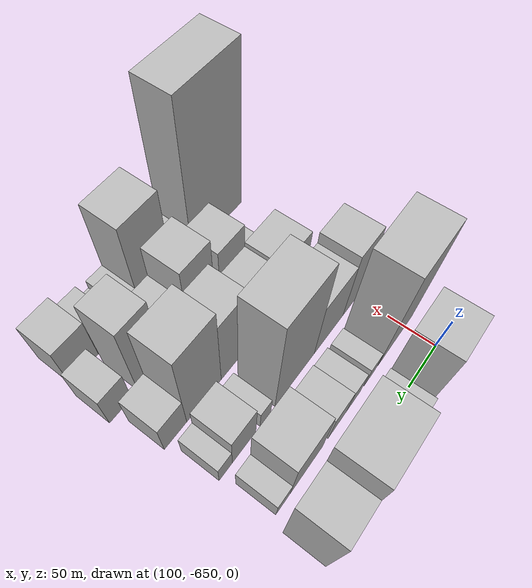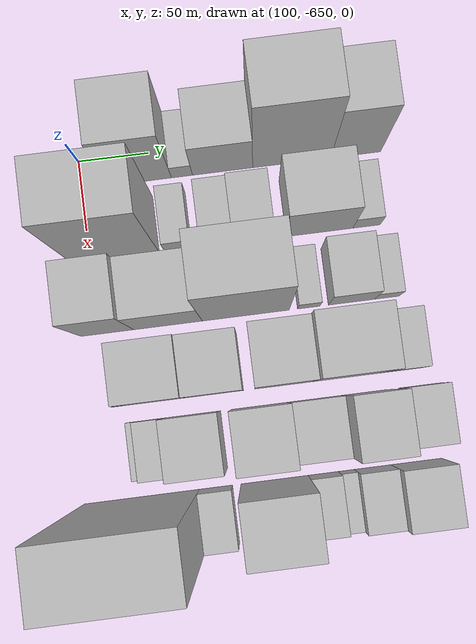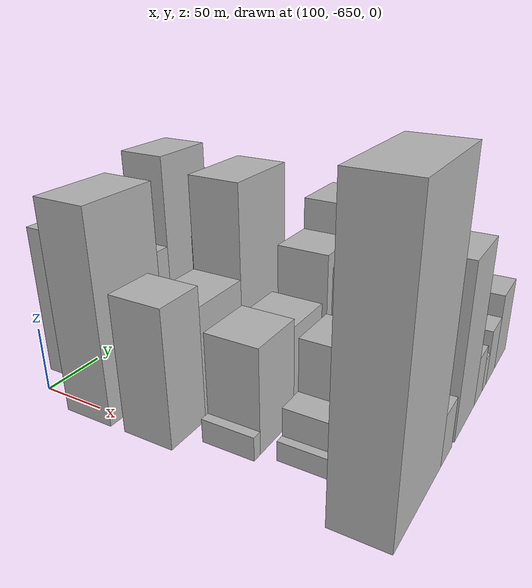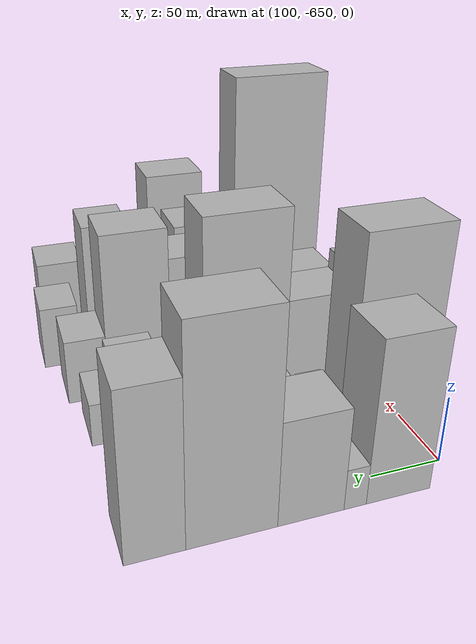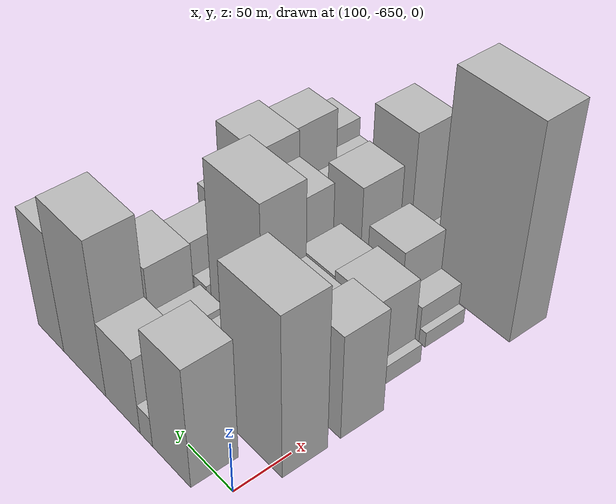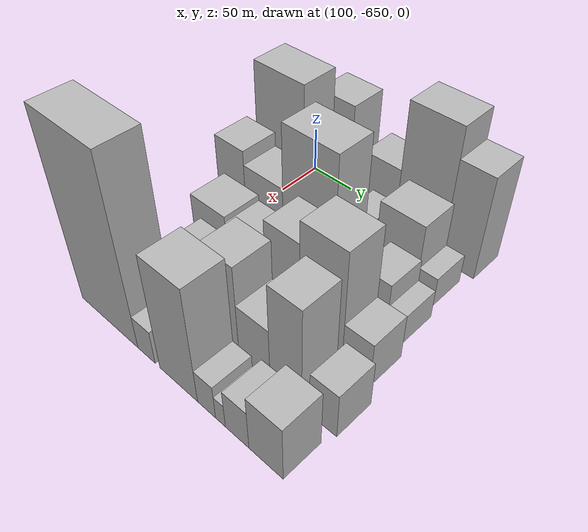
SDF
<sdf version="1.6">
 <world name="default">
  <model name="building_7">
   <static>1</static>
   <pose>100.0000 -607.7722 0 0.000000 0.000000 0.000000</pose>
   <link name="link">
    <pose>0 0 58.50 0 0 0</pose>
    <collision name="collision"><geometry><box><size>40.0000 44.2936 117.0000</size></box></geometry></collision>
    <visual name="visual">
     <cast_shadows>0</cast_shadows>
     <geometry><box><size>40.0000 44.2936 117.0000</size></box></geometry>
     <material>
      <script>
       <uri>model://HANNAS_wall/materials/scripts</uri>
       <uri>model://HANNAS_wall/materials/textures</uri>
       <name>vrc/HANNAS_wall</name>
      </script>
     </material>
    </visual>
   </link>
  </model>
  <model name="building_8">
   <static>1</static>
   <pose>100.0000 -578.1136 0 0.000000 0.000000 0.000000</pose>
   <link name="link">
    <pose>0 0 15.00 0 0 0</pose>
    <collision name="collision"><geometry><box><size>40.0000 15.0235 30.0000</size></box></geometry></collision>
    <visual name="visual">
     <cast_shadows>0</cast_shadows>
     <geometry><box><size>40.0000 15.0235 30.0000</size></box></geometry>
     <material>
      <script>
       <uri>model://HANNAS_wall/materials/scripts</uri>
       <uri>model://HANNAS_wall/materials/textures</uri>
       <name>vrc/HANNAS_wall</name>
      </script>
     </material>
    </visual>
   </link>
  </model>
  <model name="building_9">
   <static>1</static>
   <pose>100.0000 -549.1109 0 0.000000 0.000000 0.000000</pose>
   <link name="link">
    <pose>0 0 37.50 0 0 0</pose>
    <collision name="collision"><geometry><box><size>40.0000 42.9820 75.0000</size></box></geometry></collision>
    <visual name="visual">
     <cast_shadows>0</cast_shadows>
     <geometry><box><size>40.0000 42.9820 75.0000</size></box></geometry>
     <material>
      <script>
       <uri>model://HANNAS_wall/materials/scripts</uri>
       <uri>model://HANNAS_wall/materials/textures</uri>
       <name>vrc/HANNAS_wall</name>
      </script>
     </material>
    </visual>
   </link>
  </model>
  <model name="building_10">
   <static>1</static>
   <pose>100.0000 -499.6481 0 0.000000 0.000000 0.000000</pose>
   <link name="link">
    <pose>0 0 75.00 0 0 0</pose>
    <collision name="collision"><geometry><box><size>40.0000 55.9435 150.0000</size></box></geometry></collision>
    <visual name="visual">
     <cast_shadows>0</cast_shadows>
     <geometry><box><size>40.0000 55.9435 150.0000</size></box></geometry>
     <material>
      <script>
       <uri>model://HANNAS_wall/materials/scripts</uri>
       <uri>model://HANNAS_wall/materials/textures</uri>
       <name>vrc/HANNAS_wall</name>
      </script>
     </material>
    </visual>
   </link>
  </model>
  <model name="building_11">
   <static>1</static>
   <pose>100.0000 -453.7469 0 0.000000 0.000000 0.000000</pose>
   <link name="link">
    <pose>0 0 58.50 0 0 0</pose>
    <collision name="collision"><geometry><box><size>40.0000 35.8590 117.0000</size></box></geometry></collision>
    <visual name="visual">
     <cast_shadows>0</cast_shadows>
     <geometry><box><size>40.0000 35.8590 117.0000</size></box></geometry>
     <material>
      <script>
       <uri>model://HANNAS_wall/materials/scripts</uri>
       <uri>model://HANNAS_wall/materials/textures</uri>
       <name>vrc/HANNAS_wall</name>
      </script>
     </material>
    </visual>
   </link>
  </model>
  <model name="building_55">
   <static>1</static>
   <pose>152.0000 -631.4597 0 0.000000 0.000000 0.000000</pose>
   <link name="link">
    <pose>0 0 78.00 0 0 0</pose>
    <collision name="collision"><geometry><box><size>40.0000 61.7300 156.0000</size></box></geometry></collision>
    <visual name="visual">
     <cast_shadows>0</cast_shadows>
     <geometry><box><size>40.0000 61.7300 156.0000</size></box></geometry>
     <material>
      <script>
       <uri>model://HANNAS_wall/materials/scripts</uri>
       <uri>model://HANNAS_wall/materials/textures</uri>
       <name>vrc/HANNAS_wall</name>
      </script>
     </material>
    </visual>
   </link>
  </model>
  <model name="building_56">
   <static>1</static>
   <pose>152.0000 -587.0116 0 0.000000 0.000000 0.000000</pose>
   <link name="link">
    <pose>0 0 18.00 0 0 0</pose>
    <collision name="collision"><geometry><box><size>40.0000 19.1662 36.0000</size></box></geometry></collision>
    <visual name="visual">
     <cast_shadows>0</cast_shadows>
     <geometry><box><size>40.0000 19.1662 36.0000</size></box></geometry>
     <material>
      <script>
       <uri>model://HANNAS_wall/materials/scripts</uri>
       <uri>model://HANNAS_wall/materials/textures</uri>
       <name>vrc/HANNAS_wall</name>
      </script>
     </material>
    </visual>
   </link>
  </model>
  <model name="building_57">
   <static>1</static>
   <pose>152.0000 -559.1922 0 0.000000 0.000000 0.000000</pose>
   <link name="link">
    <pose>0 0 21.00 0 0 0</pose>
    <collision name="collision"><geometry><box><size>40.0000 22.4726 42.0000</size></box></geometry></collision>
    <visual name="visual">
     <cast_shadows>0</cast_shadows>
     <geometry><box><size>40.0000 22.4726 42.0000</size></box></geometry>
     <material>
      <script>
       <uri>model://HANNAS_wall/materials/scripts</uri>
       <uri>model://HANNAS_wall/materials/textures</uri>
       <name>vrc/HANNAS_wall</name>
      </script>
     </material>
    </visual>
   </link>
  </model>
  <model name="building_58">
   <static>1</static>
   <pose>152.0000 -533.6218 0 0.000000 0.000000 0.000000</pose>
   <link name="link">
    <pose>0 0 24.00 0 0 0</pose>
    <collision name="collision"><geometry><box><size>40.0000 28.6683 48.0000</size></box></geometry></collision>
    <visual name="visual">
     <cast_shadows>0</cast_shadows>
     <geometry><box><size>40.0000 28.6683 48.0000</size></box></geometry>
     <material>
      <script>
       <uri>model://HANNAS_wall/materials/scripts</uri>
       <uri>model://HANNAS_wall/materials/textures</uri>
       <name>vrc/HANNAS_wall</name>
      </script>
     </material>
    </visual>
   </link>
  </model>
  <model name="building_59">
   <static>1</static>
   <pose>152.0000 -486.4755 0 0.000000 0.000000 0.000000</pose>
   <link name="link">
    <pose>0 0 40.50 0 0 0</pose>
    <collision name="collision"><geometry><box><size>40.0000 47.6243 81.0000</size></box></geometry></collision>
    <visual name="visual">
     <cast_shadows>0</cast_shadows>
     <geometry><box><size>40.0000 47.6243 81.0000</size></box></geometry>
     <material>
      <script>
       <uri>model://HANNAS_wall/materials/scripts</uri>
       <uri>model://HANNAS_wall/materials/textures</uri>
       <name>vrc/HANNAS_wall</name>
      </script>
     </material>
    </visual>
   </link>
  </model>
  <model name="building_60">
   <static>1</static>
   <pose>152.0000 -452.9226 0 0.000000 0.000000 0.000000</pose>
   <link name="link">
    <pose>0 0 16.50 0 0 0</pose>
    <collision name="collision"><geometry><box><size>40.0000 19.4815 33.0000</size></box></geometry></collision>
    <visual name="visual">
     <cast_shadows>0</cast_shadows>
     <geometry><box><size>40.0000 19.4815 33.0000</size></box></geometry>
     <material>
      <script>
       <uri>model://HANNAS_wall/materials/scripts</uri>
       <uri>model://HANNAS_wall/materials/textures</uri>
       <name>vrc/HANNAS_wall</name>
      </script>
     </material>
    </visual>
   </link>
  </model>
  <model name="building_102">
   <static>1</static>
   <pose>204.0000 -643.3787 0 0.000000 0.000000 0.000000</pose>
   <link name="link">
    <pose>0 0 51.00 0 0 0</pose>
    <collision name="collision"><geometry><box><size>40.0000 37.1941 102.0000</size></box></geometry></collision>
    <visual name="visual">
     <cast_shadows>0</cast_shadows>
     <geometry><box><size>40.0000 37.1941 102.0000</size></box></geometry>
     <material>
      <script>
       <uri>model://HANNAS_wall/materials/scripts</uri>
       <uri>model://HANNAS_wall/materials/textures</uri>
       <name>vrc/HANNAS_wall</name>
      </script>
     </material>
    </visual>
   </link>
  </model>
  <model name="building_103">
   <static>1</static>
   <pose>204.0000 -600.5441 0 0.000000 0.000000 0.000000</pose>
   <link name="link">
    <pose>0 0 43.50 0 0 0</pose>
    <collision name="collision"><geometry><box><size>40.0000 48.4751 87.0000</size></box></geometry></collision>
    <visual name="visual">
     <cast_shadows>0</cast_shadows>
     <geometry><box><size>40.0000 48.4751 87.0000</size></box></geometry>
     <material>
      <script>
       <uri>model://HANNAS_wall/materials/scripts</uri>
       <uri>model://HANNAS_wall/materials/textures</uri>
       <name>vrc/HANNAS_wall</name>
      </script>
     </material>
    </visual>
   </link>
  </model>
  <model name="building_104">
   <static>1</static>
   <pose>204.0000 -545.6280 0 0.000000 0.000000 0.000000</pose>
   <link name="link">
    <pose>0 0 78.00 0 0 0</pose>
    <collision name="collision"><geometry><box><size>40.0000 61.3572 156.0000</size></box></geometry></collision>
    <visual name="visual">
     <cast_shadows>0</cast_shadows>
     <geometry><box><size>40.0000 61.3572 156.0000</size></box></geometry>
     <material>
      <script>
       <uri>model://HANNAS_wall/materials/scripts</uri>
       <uri>model://HANNAS_wall/materials/textures</uri>
       <name>vrc/HANNAS_wall</name>
      </script>
     </material>
    </visual>
   </link>
  </model>
  <model name="building_105">
   <static>1</static>
   <pose>204.0000 -501.0361 0 0.000000 0.000000 0.000000</pose>
   <link name="link">
    <pose>0 0 15.00 0 0 0</pose>
    <collision name="collision"><geometry><box><size>40.0000 15.8264 30.0000</size></box></geometry></collision>
    <visual name="visual">
     <cast_shadows>0</cast_shadows>
     <geometry><box><size>40.0000 15.8264 30.0000</size></box></geometry>
     <material>
      <script>
       <uri>model://HANNAS_wall/materials/scripts</uri>
       <uri>model://HANNAS_wall/materials/textures</uri>
       <name>vrc/HANNAS_wall</name>
      </script>
     </material>
    </visual>
   </link>
  </model>
  <model name="building_106">
   <static>1</static>
   <pose>204.0000 -470.7865 0 0.000000 0.000000 0.000000</pose>
   <link name="link">
    <pose>0 0 28.50 0 0 0</pose>
    <collision name="collision"><geometry><box><size>40.0000 32.6728 57.0000</size></box></geometry></collision>
    <visual name="visual">
     <cast_shadows>0</cast_shadows>
     <geometry><box><size>40.0000 32.6728 57.0000</size></box></geometry>
     <material>
      <script>
       <uri>model://HANNAS_wall/materials/scripts</uri>
       <uri>model://HANNAS_wall/materials/textures</uri>
       <name>vrc/HANNAS_wall</name>
      </script>
     </material>
    </visual>
   </link>
  </model>
  <model name="building_107">
   <static>1</static>
   <pose>204.0000 -445.6400 0 0.000000 0.000000 0.000000</pose>
   <link name="link">
    <pose>0 0 16.50 0 0 0</pose>
    <collision name="collision"><geometry><box><size>40.0000 17.6203 33.0000</size></box></geometry></collision>
    <visual name="visual">
     <cast_shadows>0</cast_shadows>
     <geometry><box><size>40.0000 17.6203 33.0000</size></box></geometry>
     <material>
      <script>
       <uri>model://HANNAS_wall/materials/scripts</uri>
       <uri>model://HANNAS_wall/materials/textures</uri>
       <name>vrc/HANNAS_wall</name>
      </script>
     </material>
    </visual>
   </link>
  </model>
  <model name="building_148">
   <static>1</static>
   <pose>256.0000 -641.1919 0 0.000000 0.000000 0.000000</pose>
   <link name="link">
    <pose>0 0 9.00 0 0 0</pose>
    <collision name="collision"><geometry><box><size>40.0000 7.4171 18.0000</size></box></geometry></collision>
    <visual name="visual">
     <cast_shadows>0</cast_shadows>
     <geometry><box><size>40.0000 7.4171 18.0000</size></box></geometry>
     <material>
      <script>
       <uri>model://HANNAS_wall/materials/scripts</uri>
       <uri>model://HANNAS_wall/materials/textures</uri>
       <name>vrc/HANNAS_wall</name>
      </script>
     </material>
    </visual>
   </link>
  </model>
  <model name="building_149">
   <static>1</static>
   <pose>256.0000 -615.4898 0 0.000000 0.000000 0.000000</pose>
   <link name="link">
    <pose>0 0 39.00 0 0 0</pose>
    <collision name="collision"><geometry><box><size>40.0000 43.9872 78.0000</size></box></geometry></collision>
    <visual name="visual">
     <cast_shadows>0</cast_shadows>
     <geometry><box><size>40.0000 43.9872 78.0000</size></box></geometry>
     <material>
      <script>
       <uri>model://HANNAS_wall/materials/scripts</uri>
       <uri>model://HANNAS_wall/materials/textures</uri>
       <name>vrc/HANNAS_wall</name>
      </script>
     </material>
    </visual>
   </link>
  </model>
  <model name="building_150">
   <static>1</static>
   <pose>256.0000 -573.6468 0 0.000000 0.000000 0.000000</pose>
   <link name="link">
    <pose>0 0 36.00 0 0 0</pose>
    <collision name="collision"><geometry><box><size>40.0000 39.6987 72.0000</size></box></geometry></collision>
    <visual name="visual">
     <cast_shadows>0</cast_shadows>
     <geometry><box><size>40.0000 39.6987 72.0000</size></box></geometry>
     <material>
      <script>
       <uri>model://HANNAS_wall/materials/scripts</uri>
       <uri>model://HANNAS_wall/materials/textures</uri>
       <name>vrc/HANNAS_wall</name>
      </script>
     </material>
    </visual>
   </link>
  </model>
  <model name="building_151">
   <static>1</static>
   <pose>256.0000 -526.0276 0 0.000000 0.000000 0.000000</pose>
   <link name="link">
    <pose>0 0 52.50 0 0 0</pose>
    <collision name="collision"><geometry><box><size>40.0000 39.5398 105.0000</size></box></geometry></collision>
    <visual name="visual">
     <cast_shadows>0</cast_shadows>
     <geometry><box><size>40.0000 39.5398 105.0000</size></box></geometry>
     <material>
      <script>
       <uri>model://HANNAS_wall/materials/scripts</uri>
       <uri>model://HANNAS_wall/materials/textures</uri>
       <name>vrc/HANNAS_wall</name>
      </script>
     </material>
    </visual>
   </link>
  </model>
  <model name="building_152">
   <static>1</static>
   <pose>256.0000 -482.3636 0 0.000000 0.000000 0.000000</pose>
   <link name="link">
    <pose>0 0 64.50 0 0 0</pose>
    <collision name="collision"><geometry><box><size>40.0000 47.7882 129.0000</size></box></geometry></collision>
    <visual name="visual">
     <cast_shadows>0</cast_shadows>
     <geometry><box><size>40.0000 47.7882 129.0000</size></box></geometry>
     <material>
      <script>
       <uri>model://HANNAS_wall/materials/scripts</uri>
       <uri>model://HANNAS_wall/materials/textures</uri>
       <name>vrc/HANNAS_wall</name>
      </script>
     </material>
    </visual>
   </link>
  </model>
  <model name="building_153">
   <static>1</static>
   <pose>256.0000 -443.7558 0 0.000000 0.000000 0.000000</pose>
   <link name="link">
    <pose>0 0 25.50 0 0 0</pose>
    <collision name="collision"><geometry><box><size>40.0000 29.4273 51.0000</size></box></geometry></collision>
    <visual name="visual">
     <cast_shadows>0</cast_shadows>
     <geometry><box><size>40.0000 29.4273 51.0000</size></box></geometry>
     <material>
      <script>
       <uri>model://HANNAS_wall/materials/scripts</uri>
       <uri>model://HANNAS_wall/materials/textures</uri>
       <name>vrc/HANNAS_wall</name>
      </script>
     </material>
    </visual>
   </link>
  </model>
  <model name="building_200">
   <static>1</static>
   <pose>308.0000 -633.8613 0 0.000000 0.000000 0.000000</pose>
   <link name="link">
    <pose>0 0 7.50 0 0 0</pose>
    <collision name="collision"><geometry><box><size>40.0000 6.5582 15.0000</size></box></geometry></collision>
    <visual name="visual">
     <cast_shadows>0</cast_shadows>
     <geometry><box><size>40.0000 6.5582 15.0000</size></box></geometry>
     <material>
      <script>
       <uri>model://HANNAS_wall/materials/scripts</uri>
       <uri>model://HANNAS_wall/materials/textures</uri>
       <name>vrc/HANNAS_wall</name>
      </script>
     </material>
    </visual>
   </link>
  </model>
  <model name="building_201">
   <static>1</static>
   <pose>308.0000 -620.0903 0 0.000000 0.000000 0.000000</pose>
   <link name="link">
    <pose>0 0 18.00 0 0 0</pose>
    <collision name="collision"><geometry><box><size>40.0000 20.9839 36.0000</size></box></geometry></collision>
    <visual name="visual">
     <cast_shadows>0</cast_shadows>
     <geometry><box><size>40.0000 20.9839 36.0000</size></box></geometry>
     <material>
      <script>
       <uri>model://HANNAS_wall/materials/scripts</uri>
       <uri>model://HANNAS_wall/materials/textures</uri>
       <name>vrc/HANNAS_wall</name>
      </script>
     </material>
    </visual>
   </link>
  </model>
  <model name="building_202">
   <static>1</static>
   <pose>308.0000 -590.5399 0 0.000000 0.000000 0.000000</pose>
   <link name="link">
    <pose>0 0 37.50 0 0 0</pose>
    <collision name="collision"><geometry><box><size>40.0000 38.1168 75.0000</size></box></geometry></collision>
    <visual name="visual">
     <cast_shadows>0</cast_shadows>
     <geometry><box><size>40.0000 38.1168 75.0000</size></box></geometry>
     <material>
      <script>
       <uri>model://HANNAS_wall/materials/scripts</uri>
       <uri>model://HANNAS_wall/materials/textures</uri>
       <name>vrc/HANNAS_wall</name>
      </script>
     </material>
    </visual>
   </link>
  </model>
  <model name="building_203">
   <static>1</static>
   <pose>308.0000 -544.1883 0 0.000000 0.000000 0.000000</pose>
   <link name="link">
    <pose>0 0 52.50 0 0 0</pose>
    <collision name="collision"><geometry><box><size>40.0000 38.5865 105.0000</size></box></geometry></collision>
    <visual name="visual">
     <cast_shadows>0</cast_shadows>
     <geometry><box><size>40.0000 38.5865 105.0000</size></box></geometry>
     <material>
      <script>
       <uri>model://HANNAS_wall/materials/scripts</uri>
       <uri>model://HANNAS_wall/materials/textures</uri>
       <name>vrc/HANNAS_wall</name>
      </script>
     </material>
    </visual>
   </link>
  </model>
  <model name="building_204">
   <static>1</static>
   <pose>308.0000 -506.8499 0 0.000000 0.000000 0.000000</pose>
   <link name="link">
    <pose>0 0 31.50 0 0 0</pose>
    <collision name="collision"><geometry><box><size>40.0000 36.0905 63.0000</size></box></geometry></collision>
    <visual name="visual">
     <cast_shadows>0</cast_shadows>
     <geometry><box><size>40.0000 36.0905 63.0000</size></box></geometry>
     <material>
      <script>
       <uri>model://HANNAS_wall/materials/scripts</uri>
       <uri>model://HANNAS_wall/materials/textures</uri>
       <name>vrc/HANNAS_wall</name>
      </script>
     </material>
    </visual>
   </link>
  </model>
  <model name="building_205">
   <static>1</static>
   <pose>308.0000 -471.5269 0 0.000000 0.000000 0.000000</pose>
   <link name="link">
    <pose>0 0 57.00 0 0 0</pose>
    <collision name="collision"><geometry><box><size>40.0000 34.5555 114.0000</size></box></geometry></collision>
    <visual name="visual">
     <cast_shadows>0</cast_shadows>
     <geometry><box><size>40.0000 34.5555 114.0000</size></box></geometry>
     <material>
      <script>
       <uri>model://HANNAS_wall/materials/scripts</uri>
       <uri>model://HANNAS_wall/materials/textures</uri>
       <name>vrc/HANNAS_wall</name>
      </script>
     </material>
    </visual>
   </link>
  </model>
  <model name="building_206">
   <static>1</static>
   <pose>308.0000 -432.1369 0 0.000000 0.000000 0.000000</pose>
   <link name="link">
    <pose>0 0 25.50 0 0 0</pose>
    <collision name="collision"><geometry><box><size>40.0000 28.2243 51.0000</size></box></geometry></collision>
    <visual name="visual">
     <cast_shadows>0</cast_shadows>
     <geometry><box><size>40.0000 28.2243 51.0000</size></box></geometry>
     <material>
      <script>
       <uri>model://HANNAS_wall/materials/scripts</uri>
       <uri>model://HANNAS_wall/materials/textures</uri>
       <name>vrc/HANNAS_wall</name>
      </script>
     </material>
    </visual>
   </link>
  </model>
  <model name="building_248">
   <static>1</static>
   <pose>360.0000 -632.8188 0 0.000000 0.000000 0.000000</pose>
   <link name="link">
    <pose>0 0 102.00 0 0 0</pose>
    <collision name="collision"><geometry><box><size>40.0000 80.4906 204.0000</size></box></geometry></collision>
    <visual name="visual">
     <cast_shadows>0</cast_shadows>
     <geometry><box><size>40.0000 80.4906 204.0000</size></box></geometry>
     <material>
      <script>
       <uri>model://HANNAS_wall/materials/scripts</uri>
       <uri>model://HANNAS_wall/materials/textures</uri>
       <name>vrc/HANNAS_wall</name>
      </script>
     </material>
    </visual>
   </link>
  </model>
  <model name="building_249">
   <static>1</static>
   <pose>360.0000 -581.0777 0 0.000000 0.000000 0.000000</pose>
   <link name="link">
    <pose>0 0 19.50 0 0 0</pose>
    <collision name="collision"><geometry><box><size>40.0000 22.9915 39.0000</size></box></geometry></collision>
    <visual name="visual">
     <cast_shadows>0</cast_shadows>
     <geometry><box><size>40.0000 22.9915 39.0000</size></box></geometry>
     <material>
      <script>
       <uri>model://HANNAS_wall/materials/scripts</uri>
       <uri>model://HANNAS_wall/materials/textures</uri>
       <name>vrc/HANNAS_wall</name>
      </script>
     </material>
    </visual>
   </link>
  </model>
  <model name="building_250">
   <static>1</static>
   <pose>360.0000 -540.0688 0 0.000000 0.000000 0.000000</pose>
   <link name="link">
    <pose>0 0 64.50 0 0 0</pose>
    <collision name="collision"><geometry><box><size>40.0000 47.0263 129.0000</size></box></geometry></collision>
    <visual name="visual">
     <cast_shadows>0</cast_shadows>
     <geometry><box><size>40.0000 47.0263 129.0000</size></box></geometry>
     <material>
      <script>
       <uri>model://HANNAS_wall/materials/scripts</uri>
       <uri>model://HANNAS_wall/materials/textures</uri>
       <name>vrc/HANNAS_wall</name>
      </script>
     </material>
    </visual>
   </link>
  </model>
  <model name="building_251">
   <static>1</static>
   <pose>360.0000 -506.0179 0 0.000000 0.000000 0.000000</pose>
   <link name="link">
    <pose>0 0 19.50 0 0 0</pose>
    <collision name="collision"><geometry><box><size>40.0000 21.0756 39.0000</size></box></geometry></collision>
    <visual name="visual">
     <cast_shadows>0</cast_shadows>
     <geometry><box><size>40.0000 21.0756 39.0000</size></box></geometry>
     <material>
      <script>
       <uri>model://HANNAS_wall/materials/scripts</uri>
       <uri>model://HANNAS_wall/materials/textures</uri>
       <name>vrc/HANNAS_wall</name>
      </script>
     </material>
    </visual>
   </link>
  </model>
  <model name="building_252">
   <static>1</static>
   <pose>360.0000 -489.9279 0 0.000000 0.000000 0.000000</pose>
   <link name="link">
    <pose>0 0 13.50 0 0 0</pose>
    <collision name="collision"><geometry><box><size>40.0000 11.1044 27.0000</size></box></geometry></collision>
    <visual name="visual">
     <cast_shadows>0</cast_shadows>
     <geometry><box><size>40.0000 11.1044 27.0000</size></box></geometry>
     <material>
      <script>
       <uri>model://HANNAS_wall/materials/scripts</uri>
       <uri>model://HANNAS_wall/materials/textures</uri>
       <name>vrc/HANNAS_wall</name>
      </script>
     </material>
    </visual>
   </link>
  </model>
  <model name="building_253">
   <static>1</static>
   <pose>360.0000 -471.4752 0 0.000000 0.000000 0.000000</pose>
   <link name="link">
    <pose>0 0 22.50 0 0 0</pose>
    <collision name="collision"><geometry><box><size>40.0000 25.8010 45.0000</size></box></geometry></collision>
    <visual name="visual">
     <cast_shadows>0</cast_shadows>
     <geometry><box><size>40.0000 25.8010 45.0000</size></box></geometry>
     <material>
      <script>
       <uri>model://HANNAS_wall/materials/scripts</uri>
       <uri>model://HANNAS_wall/materials/textures</uri>
       <name>vrc/HANNAS_wall</name>
      </script>
     </material>
    </visual>
   </link>
  </model>
  <model name="building_254">
   <static>1</static>
   <pose>360.0000 -440.7766 0 0.000000 0.000000 0.000000</pose>
   <link name="link">
    <pose>0 0 31.50 0 0 0</pose>
    <collision name="collision"><geometry><box><size>40.0000 35.5961 63.0000</size></box></geometry></collision>
    <visual name="visual">
     <cast_shadows>0</cast_shadows>
     <geometry><box><size>40.0000 35.5961 63.0000</size></box></geometry>
     <material>
      <script>
       <uri>model://HANNAS_wall/materials/scripts</uri>
       <uri>model://HANNAS_wall/materials/textures</uri>
       <name>vrc/HANNAS_wall</name>
      </script>
     </material>
    </visual>
   </link>
  </model>
 </world>
</sdf>
